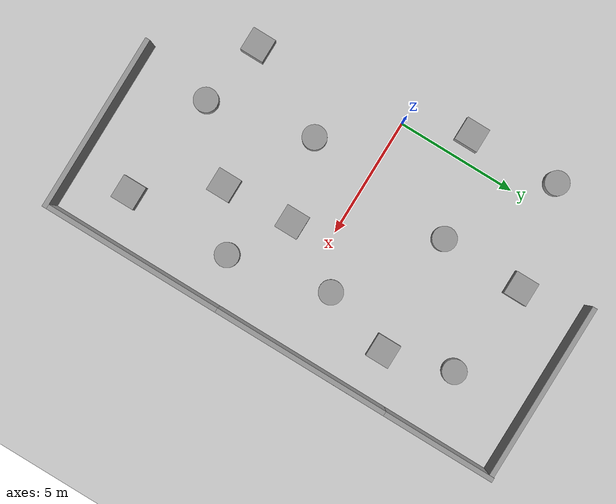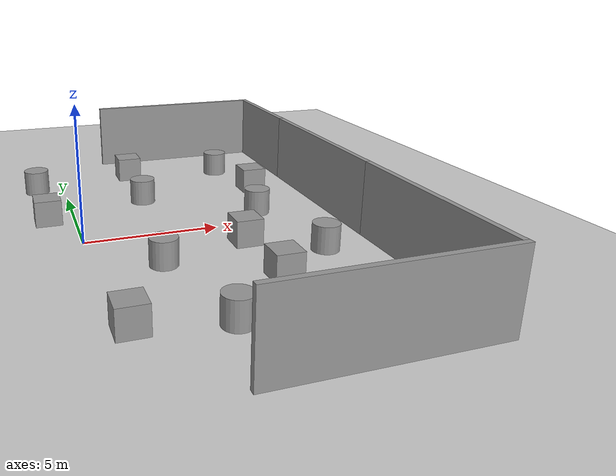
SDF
<sdf version="1.6">
 <world name="default">
  <model name="ground_plane">
   <static>1</static>
   <link name="link">
    <collision name="collision">
     <geometry><plane><normal>0 0 1</normal><size>100 100</size></plane></geometry>
     <surface><friction><ode><mu>100</mu><mu2>50</mu2></ode></friction></surface>
    </collision>
    <visual name="visual">
     <cast_shadows>0</cast_shadows>
     <geometry><plane><normal>0 0 1</normal><size>100 100</size></plane></geometry>
     <material>
      <script><uri>file://media/materials/scripts/gazebo.material</uri><name>Gazebo/Grey</name></script>
     </material>
    </visual>
   </link>
  </model>
  <model name="grey_wall_clone">
   <static>1</static>
   <link name="link">
    <pose>0 0 1.4 0 -0 0</pose>
    <collision name="collision"><geometry><box><size>7.5 0.2 2.8</size></box></geometry></collision>
    <visual name="visual">
     <cast_shadows>0</cast_shadows>
     <geometry><box><size>7.5 0.2 2.8</size></box></geometry>
     <material>
      <script>
       <uri>model://grey_wall/materials/scripts</uri>
       <uri>model://grey_wall/materials/textures</uri>
       <name>vrc/grey_wall</name>
      </script>
     </material>
    </visual>
   </link>
   <pose>6.24846 -9.88968 0 0 -0 0</pose>
  </model>
  <model name="grey_wall_clone_1_clone_1">
   <static>1</static>
   <link name="link">
    <pose>0 0 1.4 0 -0 0</pose>
    <collision name="collision"><geometry><box><size>7.5 0.2 2.8</size></box></geometry></collision>
    <visual name="visual">
     <cast_shadows>0</cast_shadows>
     <geometry><box><size>7.5 0.2 2.8</size></box></geometry>
     <material>
      <script>
       <uri>model://grey_wall/materials/scripts</uri>
       <uri>model://grey_wall/materials/textures</uri>
       <name>vrc/grey_wall</name>
      </script>
     </material>
    </visual>
   </link>
   <pose>9.89723 -6.0529 0 0 0 -1.57064</pose>
  </model>
  <model name="grey_wall_clone_1_clone_2">
   <static>1</static>
   <link name="link">
    <pose>0 0 1.4 0 -0 0</pose>
    <collision name="collision"><geometry><box><size>7.5 0.2 2.8</size></box></geometry></collision>
    <visual name="visual">
     <cast_shadows>0</cast_shadows>
     <geometry><box><size>7.5 0.2 2.8</size></box></geometry>
     <material>
      <script>
       <uri>model://grey_wall/materials/scripts</uri>
       <uri>model://grey_wall/materials/textures</uri>
       <name>vrc/grey_wall</name>
      </script>
     </material>
    </visual>
   </link>
   <pose>9.89244 1.43932 0 0 0 -1.57064</pose>
  </model>
  <model name="grey_wall_clone_1_clone_3">
   <static>1</static>
   <link name="link">
    <pose>0 0 1.4 0 -0 0</pose>
    <collision name="collision"><geometry><box><size>7.5 0.2 2.8</size></box></geometry></collision>
    <visual name="visual">
     <cast_shadows>0</cast_shadows>
     <geometry><box><size>7.5 0.2 2.8</size></box></geometry>
     <material>
      <script>
       <uri>model://grey_wall/materials/scripts</uri>
       <uri>model://grey_wall/materials/textures</uri>
       <name>vrc/grey_wall</name>
      </script>
     </material>
    </visual>
   </link>
   <pose>9.89263 6.26044 0 0 0 -1.57064</pose>
  </model>
  <model name="grey_wall_clone_clone">
   <static>1</static>
   <link name="link">
    <pose>0 0 1.4 0 -0 0</pose>
    <collision name="collision"><geometry><box><size>7.5 0.2 2.8</size></box></geometry></collision>
    <visual name="visual">
     <cast_shadows>0</cast_shadows>
     <geometry><box><size>7.5 0.2 2.8</size></box></geometry>
     <material>
      <script>
       <uri>model://grey_wall/materials/scripts</uri>
       <uri>model://grey_wall/materials/textures</uri>
       <name>vrc/grey_wall</name>
      </script>
     </material>
    </visual>
   </link>
   <pose>6.04827 9.88211 0 0 -0 0</pose>
  </model>
  <model name="unit_box">
   <static>1</static>
   <pose>5.69799 -4.62957 0.499995 -1e-05 0 0</pose>
   <link name="link">
    <inertial>
     <mass>1</mass>
     <inertia>
      <ixx>0.166667</ixx>
      <ixy>0</ixy>
      <ixz>0</ixz>
      <iyy>0.166667</iyy>
      <iyz>0</iyz>
      <izz>0.166667</izz>
     </inertia>
    </inertial>
    <collision name="collision"><geometry><box><size>1 1 1</size></box></geometry></collision>
    <visual name="visual">
     <geometry><box><size>1 1 1</size></box></geometry>
     <material>
      <script><name>Gazebo/Grey</name><uri>file://media/materials/scripts/gazebo.material</uri></script>
     </material>
    </visual>
   </link>
  </model>
  <model name="unit_cylinder">
   <static>1</static>
   <pose>3.25741 -6.94871 0.499997 3e-06 4e-06 -0</pose>
   <link name="link">
    <inertial>
     <mass>1</mass>
     <inertia><ixx>0.145833</ixx><ixy>0</ixy><ixz>0</ixz><iyy>0.145833</iyy><iyz>0</iyz><izz>0.125</izz></inertia>
    </inertial>
    <collision name="collision">
     <geometry><cylinder><radius>0.5</radius><length>1</length></cylinder></geometry>
    </collision>
    <visual name="visual">
     <geometry><cylinder><radius>0.5</radius><length>1</length></cylinder></geometry>
     <material>
      <script><name>Gazebo/Grey</name><uri>file://media/materials/scripts/gazebo.material</uri></script>
     </material>
    </visual>
   </link>
  </model>
  <model name="unit_cylinder_clone">
   <static>1</static>
   <pose>2.99837 3.73921 0.499997 3e-06 4e-06 -0</pose>
   <link name="link">
    <inertial>
     <mass>1</mass>
     <inertia><ixx>0.145833</ixx><ixy>0</ixy><ixz>0</ixz><iyy>0.145833</iyy><iyz>0</iyz><izz>0.125</izz></inertia>
    </inertial>
    <collision name="collision">
     <geometry><cylinder><radius>0.5</radius><length>1</length></cylinder></geometry>
    </collision>
    <visual name="visual">
     <geometry><cylinder><radius>0.5</radius><length>1</length></cylinder></geometry>
     <material>
      <script><name>Gazebo/Grey</name><uri>file://media/materials/scripts/gazebo.material</uri></script>
     </material>
    </visual>
   </link>
  </model>
  <model name="unit_cylinder_clone_3">
   <static>1</static>
   <pose>7.17746 6.75689 0.499997 3e-06 4e-06 -0</pose>
   <link name="link">
    <inertial>
     <mass>1</mass>
     <inertia><ixx>0.145833</ixx><ixy>0</ixy><ixz>0</ixz><iyy>0.145833</iyy><iyz>0</iyz><izz>0.125</izz></inertia>
    </inertial>
    <collision name="collision">
     <geometry><cylinder><radius>0.5</radius><length>1</length></cylinder></geometry>
    </collision>
    <visual name="visual">
     <geometry><cylinder><radius>0.5</radius><length>1</length></cylinder></geometry>
     <material>
      <script><name>Gazebo/Grey</name><uri>file://media/materials/scripts/gazebo.material</uri></script>
     </material>
    </visual>
   </link>
  </model>
  <model name="unit_cylinder_clone_4">
   <static>1</static>
   <pose>7.06849 1.07591 0.499997 3e-06 4e-06 -0</pose>
   <link name="link">
    <inertial>
     <mass>1</mass>
     <inertia><ixx>0.145833</ixx><ixy>0</ixy><ixz>0</ixz><iyy>0.145833</iyy><iyz>0</iyz><izz>0.125</izz></inertia>
    </inertial>
    <collision name="collision">
     <geometry><cylinder><radius>0.5</radius><length>1</length></cylinder></geometry>
    </collision>
    <visual name="visual">
     <geometry><cylinder><radius>0.5</radius><length>1</length></cylinder></geometry>
     <material>
      <script><name>Gazebo/Grey</name><uri>file://media/materials/scripts/gazebo.material</uri></script>
     </material>
    </visual>
   </link>
  </model>
  <model name="unit_cylinder_clone_5">
   <static>1</static>
   <pose>7.94456 -3.11609 0.499997 3e-06 4e-06 -0</pose>
   <link name="link">
    <inertial>
     <mass>1</mass>
     <inertia><ixx>0.145833</ixx><ixy>0</ixy><ixz>0</ixz><iyy>0.145833</iyy><iyz>0</iyz><izz>0.125</izz></inertia>
    </inertial>
    <collision name="collision">
     <geometry><cylinder><radius>0.5</radius><length>1</length></cylinder></geometry>
    </collision>
    <visual name="visual">
     <geometry><cylinder><radius>0.5</radius><length>1</length></cylinder></geometry>
     <material>
      <script><name>Gazebo/Grey</name><uri>file://media/materials/scripts/gazebo.material</uri></script>
     </material>
    </visual>
   </link>
  </model>
  <model name="unit_cylinder_clone_6">
   <static>1</static>
   <pose>2.28764 -2.61167 0.499997 3e-06 4e-06 -0</pose>
   <link name="link">
    <inertial>
     <mass>1</mass>
     <inertia><ixx>0.145833</ixx><ixy>0</ixy><ixz>0</ixz><iyy>0.145833</iyy><iyz>0</iyz><izz>0.125</izz></inertia>
    </inertial>
    <collision name="collision">
     <geometry><cylinder><radius>0.5</radius><length>1</length></cylinder></geometry>
    </collision>
    <visual name="visual">
     <geometry><cylinder><radius>0.5</radius><length>1</length></cylinder></geometry>
     <material>
      <script><name>Gazebo/Grey</name><uri>file://media/materials/scripts/gazebo.material</uri></script>
     </material>
    </visual>
   </link>
  </model>
  <model name="unit_cylinder_clone_10">
   <static>1</static>
   <pose>-1.12268 6.32161 0.499997 3e-06 4e-06 -0</pose>
   <link name="link">
    <inertial>
     <mass>1</mass>
     <inertia><ixx>0.145833</ixx><ixy>0</ixy><ixz>0</ixz><iyy>0.145833</iyy><iyz>0</iyz><izz>0.125</izz></inertia>
    </inertial>
    <collision name="collision">
     <geometry><cylinder><radius>0.5</radius><length>1</length></cylinder></geometry>
    </collision>
    <visual name="visual">
     <geometry><cylinder><radius>0.5</radius><length>1</length></cylinder></geometry>
     <material>
      <script><name>Gazebo/Grey</name><uri>file://media/materials/scripts/gazebo.material</uri></script>
     </material>
    </visual>
   </link>
  </model>
  <model name="unit_box_clone">
   <static>1</static>
   <pose>-1 2.53392 0.499995 -1e-05 0 0</pose>
   <link name="link">
    <inertial>
     <mass>1</mass>
     <inertia>
      <ixx>0.166667</ixx>
      <ixy>0</ixy>
      <ixz>0</ixz>
      <iyy>0.166667</iyy>
      <iyz>0</iyz>
      <izz>0.166667</izz>
     </inertia>
    </inertial>
    <collision name="collision"><geometry><box><size>1 1 1</size></box></geometry></collision>
    <visual name="visual">
     <geometry><box><size>1 1 1</size></box></geometry>
     <material>
      <script><name>Gazebo/Grey</name><uri>file://media/materials/scripts/gazebo.material</uri></script>
     </material>
    </visual>
   </link>
  </model>
  <model name="unit_box_clone_1">
   <static>1</static>
   <pose>3.08205 7.27873 0.499995 -1e-05 0 0</pose>
   <link name="link">
    <inertial>
     <mass>1</mass>
     <inertia>
      <ixx>0.166667</ixx>
      <ixy>0</ixy>
      <ixz>0</ixz>
      <iyy>0.166667</iyy>
      <iyz>0</iyz>
      <izz>0.166667</izz>
     </inertia>
    </inertial>
    <collision name="collision"><geometry><box><size>1 1 1</size></box></geometry></collision>
    <visual name="visual">
     <geometry><box><size>1 1 1</size></box></geometry>
     <material>
      <script><name>Gazebo/Grey</name><uri>file://media/materials/scripts/gazebo.material</uri></script>
     </material>
    </visual>
   </link>
  </model>
  <model name="unit_box_clone_2">
   <static>1</static>
   <pose>7.93455 3.99208 0.499995 -1e-05 0 0</pose>
   <link name="link">
    <inertial>
     <mass>1</mass>
     <inertia>
      <ixx>0.166667</ixx>
      <ixy>0</ixy>
      <ixz>0</ixz>
      <iyy>0.166667</iyy>
      <iyz>0</iyz>
      <izz>0.166667</izz>
     </inertia>
    </inertial>
    <collision name="collision"><geometry><box><size>1 1 1</size></box></geometry></collision>
    <visual name="visual">
     <geometry><box><size>1 1 1</size></box></geometry>
     <material>
      <script><name>Gazebo/Grey</name><uri>file://media/materials/scripts/gazebo.material</uri></script>
     </material>
    </visual>
   </link>
  </model>
  <model name="unit_box_clone_5">
   <static>1</static>
   <pose>0.38376 -6.3478 0.499995 -1e-05 0 0</pose>
   <link name="link">
    <inertial>
     <mass>1</mass>
     <inertia>
      <ixx>0.166667</ixx>
      <ixy>0</ixy>
      <ixz>0</ixz>
      <iyy>0.166667</iyy>
      <iyz>0</iyz>
      <izz>0.166667</izz>
     </inertia>
    </inertial>
    <collision name="collision"><geometry><box><size>1 1 1</size></box></geometry></collision>
    <visual name="visual">
     <geometry><box><size>1 1 1</size></box></geometry>
     <material>
      <script><name>Gazebo/Grey</name><uri>file://media/materials/scripts/gazebo.material</uri></script>
     </material>
    </visual>
   </link>
  </model>
  <model name="unit_box_clone_6">
   <static>1</static>
   <pose>5.53149 -1.63345 0.499995 -1e-05 0 0</pose>
   <link name="link">
    <inertial>
     <mass>1</mass>
     <inertia>
      <ixx>0.166667</ixx>
      <ixy>0</ixy>
      <ixz>0</ixz>
      <iyy>0.166667</iyy>
      <iyz>0</iyz>
      <izz>0.166667</izz>
     </inertia>
    </inertial>
    <collision name="collision"><geometry><box><size>1 1 1</size></box></geometry></collision>
    <visual name="visual">
     <geometry><box><size>1 1 1</size></box></geometry>
     <material>
      <script><name>Gazebo/Grey</name><uri>file://media/materials/scripts/gazebo.material</uri></script>
     </material>
    </visual>
   </link>
  </model>
  <model name="unit_box_clone_7">
   <static>1</static>
   <pose>7.87285 -7.62958 0.499995 -1e-05 0 0</pose>
   <link name="link">
    <inertial>
     <mass>1</mass>
     <inertia>
      <ixx>0.166667</ixx>
      <ixy>0</ixy>
      <ixz>0</ixz>
      <iyy>0.166667</iyy>
      <iyz>0</iyz>
      <izz>0.166667</izz>
     </inertia>
    </inertial>
    <collision name="collision"><geometry><box><size>1 1 1</size></box></geometry></collision>
    <visual name="visual">
     <geometry><box><size>1 1 1</size></box></geometry>
     <material>
      <script><name>Gazebo/Grey</name><uri>file://media/materials/scripts/gazebo.material</uri></script>
     </material>
    </visual>
   </link>
  </model>
 </world>
</sdf>
